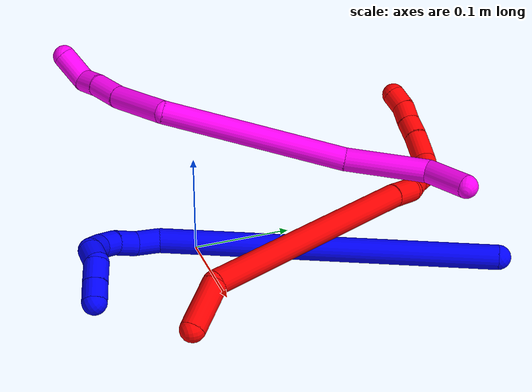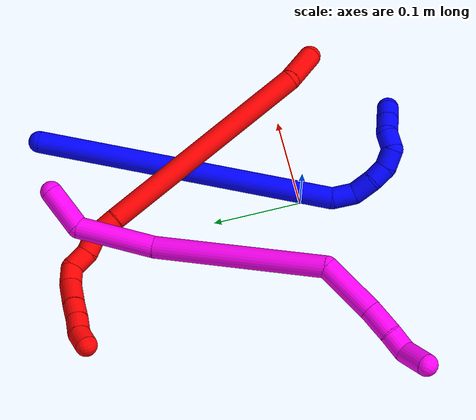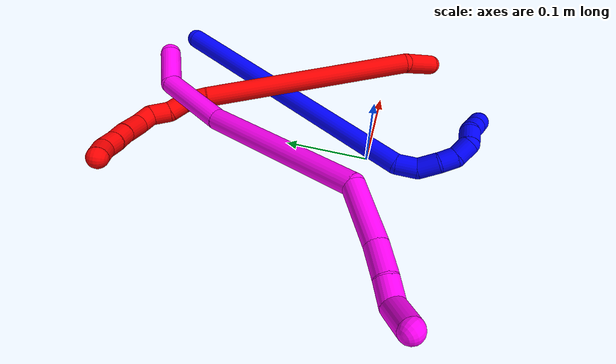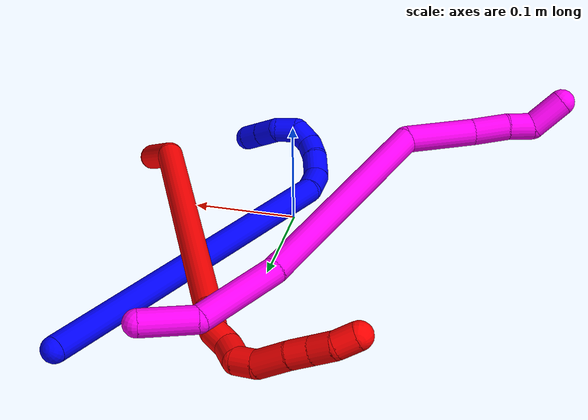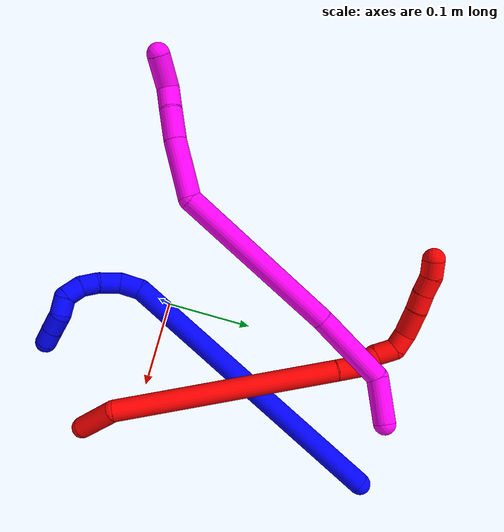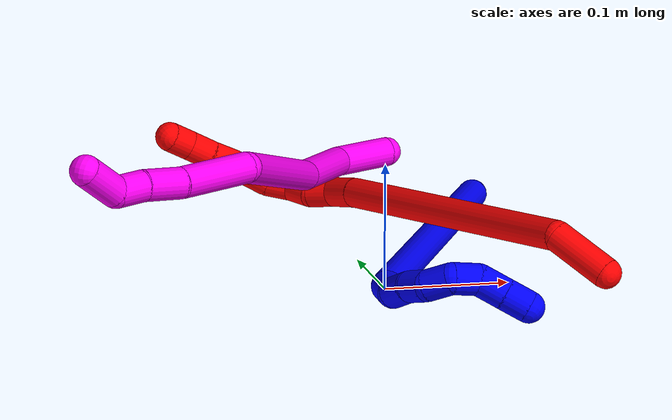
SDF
<sdf version="1.7">
 <world name="default">
  <model name="photoneo_s_sensor">
   <static>1</static>
   <pose>0 0 2 1.57079 1.57079 3.14159</pose>
   <link name="link">
    <inertial><mass>0.1</mass></inertial>
    <sensor name="sensor" type="depth">
     <update_rate>30</update_rate>
     <camera>
      <horizontal_fov>1.22</horizontal_fov>
      <image><width>1920</width><height>1200</height><format>B8G8R8</format></image>
      <clip><near>0.1</near><far>4</far></clip>
      <depth_camera><output>points</output></depth_camera>
     </camera>
     <plugin name="camera_plugin" filename="libgazebo_ros_depth_camera.so">
      <baseline>0.2</baseline>
      <alwaysOn>1</alwaysOn>
      <updateRate>0.0</updateRate>
      <cameraName>camera_ir</cameraName>
      <imageTopicName>/camera/color/image_raw</imageTopicName>
      <cameraInfoTopicName>/camera/color/camera_info</cameraInfoTopicName>
      <depthImageTopicName>/camera/depth/image_raw</depthImageTopicName>
      <depthImageCameraInfoTopicName>/camera/depth/camera_info</depthImageCameraInfoTopicName>
      <pointCloudTopicName>/camera/depth/points</pointCloudTopicName>
      <frameName>fr_optical</frameName>
      <pointCloudCutoff>0.1</pointCloudCutoff>
      <pointCloudCutoffMax>2.0</pointCloudCutoffMax>
      <distortionK1>0</distortionK1>
      <distortionK2>0</distortionK2>
      <distortionK3>0</distortionK3>
      <distortionT1>0</distortionT1>
      <distortionT2>0</distortionT2>
      <CxPrime>0</CxPrime>
      <Cx>0</Cx>
      <Cy>0</Cy>
      <focalLength>0</focalLength>
      <hackBaseline>0</hackBaseline>
     </plugin>
    </sensor>
   </link>
  </model>
  <model name="bin">
   <static>1</static>
   <link name="bottom">
    <collision name="collision-bottom">
     <pose>0 0 -0.01 0 -0 0</pose>
     <geometry><box><size>0.8 0.6 0.02</size></box></geometry>
     <surface>
      <friction><ode><mu>100</mu><mu2>100</mu2></ode></friction>
      <contact><collide_bitmask>65535</collide_bitmask></contact>
     </surface>
    </collision>
   </link>
   <link name="west_wall">
    <collision name="collision-west_wall">
     <pose>-0.41 0 0.1 0 -0 0</pose>
     <geometry><box><size>0.02 0.6 0.2</size></box></geometry>
     <surface>
      <friction><ode><mu>100</mu><mu2>100</mu2></ode></friction>
      <contact><collide_bitmask>65535</collide_bitmask></contact>
     </surface>
    </collision>
   </link>
   <link name="east_wall">
    <collision name="collision-east_wall">
     <pose>0.41 0 0.1 0 -0 0</pose>
     <geometry><box><size>0.02 0.6 0.2</size></box></geometry>
     <surface>
      <friction><ode><mu>100</mu><mu2>100</mu2></ode></friction>
      <contact><collide_bitmask>65535</collide_bitmask></contact>
     </surface>
    </collision>
   </link>
   <link name="south_wall">
    <collision name="collision-south_wall">
     <pose>0 -0.31 0.1 0 -0 0</pose>
     <geometry><box><size>0.8 0.02 0.2</size></box></geometry>
     <surface>
      <friction><ode><mu>100</mu><mu2>100</mu2></ode></friction>
      <contact><collide_bitmask>65535</collide_bitmask></contact>
     </surface>
    </collision>
   </link>
   <link name="north_wall">
    <collision name="collision-north_wall">
     <pose>0 0.31 0.1 0 -0 0</pose>
     <geometry><box><size>0.8 0.02 0.2</size></box></geometry>
     <surface>
      <friction><ode><mu>100</mu><mu2>100</mu2></ode></friction>
      <contact><collide_bitmask>65535</collide_bitmask></contact>
     </surface>
    </collision>
   </link>
  </model>
  <model name="1">
   <static>0</static>
   <link name="1">
    <collision name="collision-cylinder-e_1_1_4">
     <pose>-0.064429 -0.074584 -0.139258 2.64989 -0.387251 -1.32662</pose>
     <geometry><cylinder><radius>0.0125</radius><length>0.341213</length></cylinder></geometry>
     <surface>
      <friction><ode><mu>1.16</mu><mu2>1.16</mu2><slip1>0</slip1><slip2>0</slip2></ode></friction>
      <contact><ode><kp>1e+06</kp><kd>1</kd><max_vel>0</max_vel><min_depth>0.001</min_depth></ode></contact>
     </surface>
    </collision>
    <visual name="visual-cylinder-e_1_1_4">
     <pose>-0.064429 -0.074584 -0.139258 2.64989 -0.387251 -1.32662</pose>
     <geometry><cylinder><radius>0.0125</radius><length>0.341213</length></cylinder></geometry>
     <material><ambient>0 0 1 1</ambient></material>
    </visual>
    <collision name="collision-cylinder-e_2_4_5">
     <pose>-0.129223 -0.157543 -0.288476 2.44243 -0.028118 -0.077096</pose>
     <geometry><cylinder><radius>0.0125</radius><length>0.026037</length></cylinder></geometry>
     <surface>
      <friction><ode><mu>1.16</mu><mu2>1.16</mu2><slip1>0</slip1><slip2>0</slip2></ode></friction>
      <contact><ode><kp>1e+06</kp><kd>1</kd><max_vel>0</max_vel><min_depth>0.001</min_depth></ode></contact>
     </surface>
    </collision>
    <visual name="visual-cylinder-e_2_4_5">
     <pose>-0.129223 -0.157543 -0.288476 2.44243 -0.028118 -0.077096</pose>
     <geometry><cylinder><radius>0.0125</radius><length>0.026037</length></cylinder></geometry>
     <material><ambient>0 0 1 1</ambient></material>
    </visual>
    <collision name="collision-cylinder-e_3_5_6">
     <pose>-0.127982 -0.177607 -0.303522 1.98121 0.125386 0.190968</pose>
     <geometry><cylinder><radius>0.0125</radius><length>0.025697</length></cylinder></geometry>
     <surface>
      <friction><ode><mu>1.16</mu><mu2>1.16</mu2><slip1>0</slip1><slip2>0</slip2></ode></friction>
      <contact><ode><kp>1e+06</kp><kd>1</kd><max_vel>0</max_vel><min_depth>0.001</min_depth></ode></contact>
     </surface>
    </collision>
    <visual name="visual-cylinder-e_3_5_6">
     <pose>-0.127982 -0.177607 -0.303522 1.98121 0.125386 0.190968</pose>
     <geometry><cylinder><radius>0.0125</radius><length>0.025697</length></cylinder></geometry>
     <material><ambient>0 0 1 1</ambient></material>
    </visual>
    <collision name="collision-cylinder-e_4_6_7">
     <pose>-0.122667 -0.197791 -0.312906 2.03916 0.371494 0.593283</pose>
     <geometry><cylinder><radius>0.0125</radius><length>0.020435</length></cylinder></geometry>
     <surface>
      <friction><ode><mu>1.16</mu><mu2>1.16</mu2><slip1>0</slip1><slip2>0</slip2></ode></friction>
      <contact><ode><kp>1e+06</kp><kd>1</kd><max_vel>0</max_vel><min_depth>0.001</min_depth></ode></contact>
     </surface>
    </collision>
    <visual name="visual-cylinder-e_4_6_7">
     <pose>-0.122667 -0.197791 -0.312906 2.03916 0.371494 0.593283</pose>
     <geometry><cylinder><radius>0.0125</radius><length>0.020435</length></cylinder></geometry>
     <material><ambient>0 0 1 1</ambient></material>
    </visual>
    <collision name="collision-cylinder-e_5_7_8">
     <pose>-0.112657 -0.215395 -0.317573 1.61126 0.60477 0.628167</pose>
     <geometry><cylinder><radius>0.0125</radius><length>0.022163</length></cylinder></geometry>
     <surface>
      <friction><ode><mu>1.16</mu><mu2>1.16</mu2><slip1>0</slip1><slip2>0</slip2></ode></friction>
      <contact><ode><kp>1e+06</kp><kd>1</kd><max_vel>0</max_vel><min_depth>0.001</min_depth></ode></contact>
     </surface>
    </collision>
    <visual name="visual-cylinder-e_5_7_8">
     <pose>-0.112657 -0.215395 -0.317573 1.61126 0.60477 0.628167</pose>
     <geometry><cylinder><radius>0.0125</radius><length>0.022163</length></cylinder></geometry>
     <material><ambient>0 0 1 1</ambient></material>
    </visual>
    <collision name="collision-cylinder-e_6_8_9">
     <pose>-0.096292 -0.22674 -0.315622 0.767044 1.26096 0.572798</pose>
     <geometry><cylinder><radius>0.0125</radius><length>0.021134</length></cylinder></geometry>
     <surface>
      <friction><ode><mu>1.16</mu><mu2>1.16</mu2><slip1>0</slip1><slip2>0</slip2></ode></friction>
      <contact><ode><kp>1e+06</kp><kd>1</kd><max_vel>0</max_vel><min_depth>0.001</min_depth></ode></contact>
     </surface>
    </collision>
    <visual name="visual-cylinder-e_6_8_9">
     <pose>-0.096292 -0.22674 -0.315622 0.767044 1.26096 0.572798</pose>
     <geometry><cylinder><radius>0.0125</radius><length>0.021134</length></cylinder></geometry>
     <material><ambient>0 0 1 1</ambient></material>
    </visual>
    <collision name="collision-cylinder-e_7_9_10">
     <pose>-0.075349 -0.229966 -0.316458 2.83745 1.27565 2.7338</pose>
     <geometry><cylinder><radius>0.0125</radius><length>0.022742</length></cylinder></geometry>
     <surface>
      <friction><ode><mu>1.16</mu><mu2>1.16</mu2><slip1>0</slip1><slip2>0</slip2></ode></friction>
      <contact><ode><kp>1e+06</kp><kd>1</kd><max_vel>0</max_vel><min_depth>0.001</min_depth></ode></contact>
     </surface>
    </collision>
    <visual name="visual-cylinder-e_7_9_10">
     <pose>-0.075349 -0.229966 -0.316458 2.83745 1.27565 2.7338</pose>
     <geometry><cylinder><radius>0.0125</radius><length>0.022742</length></cylinder></geometry>
     <material><ambient>0 0 1 1</ambient></material>
    </visual>
    <collision name="collision-cylinder-e_8_10_2">
     <pose>-0.054571 -0.231748 -0.32231 2.85608 1.29414 2.76563</pose>
     <geometry><cylinder><radius>0.0125</radius><length>0.020578</length></cylinder></geometry>
     <surface>
      <friction><ode><mu>1.16</mu><mu2>1.16</mu2><slip1>0</slip1><slip2>0</slip2></ode></friction>
      <contact><ode><kp>1e+06</kp><kd>1</kd><max_vel>0</max_vel><min_depth>0.001</min_depth></ode></contact>
     </surface>
    </collision>
    <visual name="visual-cylinder-e_8_10_2">
     <pose>-0.054571 -0.231748 -0.32231 2.85608 1.29414 2.76563</pose>
     <geometry><cylinder><radius>0.0125</radius><length>0.020578</length></cylinder></geometry>
     <material><ambient>0 0 1 1</ambient></material>
    </visual>
    <collision name="collision-sphere-2">
     <pose>-0.044673 -0.23254 -0.325007 0 -0 0</pose>
     <geometry><sphere><radius>0.0125</radius></sphere></geometry>
     <surface>
      <friction><ode><mu>1.16</mu><mu2>1.16</mu2><slip1>0</slip1><slip2>0</slip2></ode></friction>
      <contact><ode><kp>1e+06</kp><kd>1</kd><max_vel>0</max_vel><min_depth>0.001</min_depth></ode></contact>
     </surface>
    </collision>
    <visual name="visual-sphere-2">
     <pose>-0.044673 -0.23254 -0.325007 0 -0 0</pose>
     <geometry><sphere><radius>0.0125</radius></sphere></geometry>
     <material><ambient>0 0 1 1</ambient></material>
    </visual>
    <collision name="collision-sphere-10">
     <pose>-0.064469 -0.230957 -0.319614 0 -0 0</pose>
     <geometry><sphere><radius>0.0125</radius></sphere></geometry>
     <surface>
      <friction><ode><mu>1.16</mu><mu2>1.16</mu2><slip1>0</slip1><slip2>0</slip2></ode></friction>
      <contact><ode><kp>1e+06</kp><kd>1</kd><max_vel>0</max_vel><min_depth>0.001</min_depth></ode></contact>
     </surface>
    </collision>
    <visual name="visual-sphere-10">
     <pose>-0.064469 -0.230957 -0.319614 0 -0 0</pose>
     <geometry><sphere><radius>0.0125</radius></sphere></geometry>
     <material><ambient>0 0 1 1</ambient></material>
    </visual>
    <collision name="collision-sphere-9">
     <pose>-0.086228 -0.228976 -0.313302 0 -0 0</pose>
     <geometry><sphere><radius>0.0125</radius></sphere></geometry>
     <surface>
      <friction><ode><mu>1.16</mu><mu2>1.16</mu2><slip1>0</slip1><slip2>0</slip2></ode></friction>
      <contact><ode><kp>1e+06</kp><kd>1</kd><max_vel>0</max_vel><min_depth>0.001</min_depth></ode></contact>
     </surface>
    </collision>
    <visual name="visual-sphere-9">
     <pose>-0.086228 -0.228976 -0.313302 0 -0 0</pose>
     <geometry><sphere><radius>0.0125</radius></sphere></geometry>
     <material><ambient>0 0 1 1</ambient></material>
    </visual>
    <collision name="collision-sphere-4">
     <pose>-0.128857 -0.149168 -0.278516 0 -0 0</pose>
     <geometry><sphere><radius>0.0125</radius></sphere></geometry>
     <surface>
      <friction><ode><mu>1.16</mu><mu2>1.16</mu2><slip1>0</slip1><slip2>0</slip2></ode></friction>
      <contact><ode><kp>1e+06</kp><kd>1</kd><max_vel>0</max_vel><min_depth>0.001</min_depth></ode></contact>
     </surface>
    </collision>
    <visual name="visual-sphere-4">
     <pose>-0.128857 -0.149168 -0.278516 0 -0 0</pose>
     <geometry><sphere><radius>0.0125</radius></sphere></geometry>
     <material><ambient>0 0 1 1</ambient></material>
    </visual>
    <collision name="collision-sphere-1">
     <geometry><sphere><radius>0.0125</radius></sphere></geometry>
     <surface>
      <friction><ode><mu>1.16</mu><mu2>1.16</mu2><slip1>0</slip1><slip2>0</slip2></ode></friction>
      <contact><ode><kp>1e+06</kp><kd>1</kd><max_vel>0</max_vel><min_depth>0.001</min_depth></ode></contact>
     </surface>
    </collision>
    <visual name="visual-sphere-1">
     <geometry><sphere><radius>0.0125</radius></sphere></geometry>
     <material><ambient>0 0 1 1</ambient></material>
    </visual>
    <collision name="collision-sphere-8">
     <pose>-0.106356 -0.224504 -0.317942 0 -0 0</pose>
     <geometry><sphere><radius>0.0125</radius></sphere></geometry>
     <surface>
      <friction><ode><mu>1.16</mu><mu2>1.16</mu2><slip1>0</slip1><slip2>0</slip2></ode></friction>
      <contact><ode><kp>1e+06</kp><kd>1</kd><max_vel>0</max_vel><min_depth>0.001</min_depth></ode></contact>
     </surface>
    </collision>
    <visual name="visual-sphere-8">
     <pose>-0.106356 -0.224504 -0.317942 0 -0 0</pose>
     <geometry><sphere><radius>0.0125</radius></sphere></geometry>
     <material><ambient>0 0 1 1</ambient></material>
    </visual>
    <collision name="collision-sphere-5">
     <pose>-0.129589 -0.165918 -0.298436 0 -0 0</pose>
     <geometry><sphere><radius>0.0125</radius></sphere></geometry>
     <surface>
      <friction><ode><mu>1.16</mu><mu2>1.16</mu2><slip1>0</slip1><slip2>0</slip2></ode></friction>
      <contact><ode><kp>1e+06</kp><kd>1</kd><max_vel>0</max_vel><min_depth>0.001</min_depth></ode></contact>
     </surface>
    </collision>
    <visual name="visual-sphere-5">
     <pose>-0.129589 -0.165918 -0.298436 0 -0 0</pose>
     <geometry><sphere><radius>0.0125</radius></sphere></geometry>
     <material><ambient>0 0 1 1</ambient></material>
    </visual>
    <collision name="collision-sphere-6">
     <pose>-0.126376 -0.189296 -0.308608 0 -0 0</pose>
     <geometry><sphere><radius>0.0125</radius></sphere></geometry>
     <surface>
      <friction><ode><mu>1.16</mu><mu2>1.16</mu2><slip1>0</slip1><slip2>0</slip2></ode></friction>
      <contact><ode><kp>1e+06</kp><kd>1</kd><max_vel>0</max_vel><min_depth>0.001</min_depth></ode></contact>
     </surface>
    </collision>
    <visual name="visual-sphere-6">
     <pose>-0.126376 -0.189296 -0.308608 0 -0 0</pose>
     <geometry><sphere><radius>0.0125</radius></sphere></geometry>
     <material><ambient>0 0 1 1</ambient></material>
    </visual>
    <collision name="collision-sphere-7">
     <pose>-0.118957 -0.206286 -0.317204 0 -0 0</pose>
     <geometry><sphere><radius>0.0125</radius></sphere></geometry>
     <surface>
      <friction><ode><mu>1.16</mu><mu2>1.16</mu2><slip1>0</slip1><slip2>0</slip2></ode></friction>
      <contact><ode><kp>1e+06</kp><kd>1</kd><max_vel>0</max_vel><min_depth>0.001</min_depth></ode></contact>
     </surface>
    </collision>
    <visual name="visual-sphere-7">
     <pose>-0.118957 -0.206286 -0.317204 0 -0 0</pose>
     <geometry><sphere><radius>0.0125</radius></sphere></geometry>
     <material><ambient>0 0 1 1</ambient></material>
    </visual>
    <inertial>
     <pose>-0.077025 -0.115443 -0.19352 0 -0 0</pose>
     <mass>0.5</mass>
     <inertia>
      <ixx>-0.002237</ixx>
      <ixy>0</ixy>
      <ixz>0</ixz>
      <iyy>-0.003133</iyy>
      <iyz>0</iyz>
      <izz>0.002683</izz>
     </inertia>
    </inertial>
   </link>
   <pose>0.140667 0.271674 0.01149 -0.90339 0.404856 -0.023743</pose>
  </model>
  <model name="2">
   <static>0</static>
   <link name="2">
    <collision name="collision-cylinder-e_1_1_4">
     <pose>-0.016876 0.004932 0.018583 -0.259427 -0.720386 0.098179</pose>
     <geometry><cylinder><radius>0.0125</radius><length>0.051165</length></cylinder></geometry>
     <surface>
      <friction><ode><mu>1.16</mu><mu2>1.16</mu2><slip1>0</slip1><slip2>0</slip2></ode></friction>
      <contact><ode><kp>1e+06</kp><kd>1</kd><max_vel>0</max_vel><min_depth>0.001</min_depth></ode></contact>
     </surface>
    </collision>
    <visual name="visual-cylinder-e_1_1_4">
     <pose>-0.016876 0.004932 0.018583 -0.259427 -0.720386 0.098179</pose>
     <geometry><cylinder><radius>0.0125</radius><length>0.051165</length></cylinder></geometry>
     <material><ambient>1 0 0 1</ambient></material>
    </visual>
    <collision name="collision-cylinder-e_2_4_5">
     <pose>-0.048212 0.05517 0.156551 -0.362705 -0.112759 0.020698</pose>
     <geometry><cylinder><radius>0.0125</radius><length>0.257017</length></cylinder></geometry>
     <surface>
      <friction><ode><mu>1.16</mu><mu2>1.16</mu2><slip1>0</slip1><slip2>0</slip2></ode></friction>
      <contact><ode><kp>1e+06</kp><kd>1</kd><max_vel>0</max_vel><min_depth>0.001</min_depth></ode></contact>
     </surface>
    </collision>
    <visual name="visual-cylinder-e_2_4_5">
     <pose>-0.048212 0.05517 0.156551 -0.362705 -0.112759 0.020698</pose>
     <geometry><cylinder><radius>0.0125</radius><length>0.257017</length></cylinder></geometry>
     <material><ambient>1 0 0 1</ambient></material>
    </visual>
    <collision name="collision-cylinder-e_3_5_6">
     <pose>-0.06301 0.106724 0.289666 -0.427065 -0.022391 0.004856</pose>
     <geometry><cylinder><radius>0.0125</radius><length>0.030178</length></cylinder></geometry>
     <surface>
      <friction><ode><mu>1.16</mu><mu2>1.16</mu2><slip1>0</slip1><slip2>0</slip2></ode></friction>
      <contact><ode><kp>1e+06</kp><kd>1</kd><max_vel>0</max_vel><min_depth>0.001</min_depth></ode></contact>
     </surface>
    </collision>
    <visual name="visual-cylinder-e_3_5_6">
     <pose>-0.06301 0.106724 0.289666 -0.427065 -0.022391 0.004856</pose>
     <geometry><cylinder><radius>0.0125</radius><length>0.030178</length></cylinder></geometry>
     <material><ambient>1 0 0 1</ambient></material>
    </visual>
    <collision name="collision-cylinder-e_4_6_7">
     <pose>-0.066364 0.120248 0.310512 -0.796496 -0.288137 0.121922</pose>
     <geometry><cylinder><radius>0.0125</radius><length>0.021228</length></cylinder></geometry>
     <surface>
      <friction><ode><mu>1.16</mu><mu2>1.16</mu2><slip1>0</slip1><slip2>0</slip2></ode></friction>
      <contact><ode><kp>1e+06</kp><kd>1</kd><max_vel>0</max_vel><min_depth>0.001</min_depth></ode></contact>
     </surface>
    </collision>
    <visual name="visual-cylinder-e_4_6_7">
     <pose>-0.066364 0.120248 0.310512 -0.796496 -0.288137 0.121922</pose>
     <geometry><cylinder><radius>0.0125</radius><length>0.021228</length></cylinder></geometry>
     <material><ambient>1 0 0 1</ambient></material>
    </visual>
    <collision name="collision-cylinder-e_5_7_8">
     <pose>-0.072757 0.131981 0.328296 -0.395834 -0.284162 0.057357</pose>
     <geometry><cylinder><radius>0.0125</radius><length>0.024093</length></cylinder></geometry>
     <surface>
      <friction><ode><mu>1.16</mu><mu2>1.16</mu2><slip1>0</slip1><slip2>0</slip2></ode></friction>
      <contact><ode><kp>1e+06</kp><kd>1</kd><max_vel>0</max_vel><min_depth>0.001</min_depth></ode></contact>
     </surface>
    </collision>
    <visual name="visual-cylinder-e_5_7_8">
     <pose>-0.072757 0.131981 0.328296 -0.395834 -0.284162 0.057357</pose>
     <geometry><cylinder><radius>0.0125</radius><length>0.024093</length></cylinder></geometry>
     <material><ambient>1 0 0 1</ambient></material>
    </visual>
    <collision name="collision-cylinder-e_6_8_9">
     <pose>-0.08317 0.143191 0.34297 -1.0354 -0.730774 0.429045</pose>
     <geometry><cylinder><radius>0.0125</radius><length>0.021082</length></cylinder></geometry>
     <surface>
      <friction><ode><mu>1.16</mu><mu2>1.16</mu2><slip1>0</slip1><slip2>0</slip2></ode></friction>
      <contact><ode><kp>1e+06</kp><kd>1</kd><max_vel>0</max_vel><min_depth>0.001</min_depth></ode></contact>
     </surface>
    </collision>
    <visual name="visual-cylinder-e_6_8_9">
     <pose>-0.08317 0.143191 0.34297 -1.0354 -0.730774 0.429045</pose>
     <geometry><cylinder><radius>0.0125</radius><length>0.021082</length></cylinder></geometry>
     <material><ambient>1 0 0 1</ambient></material>
    </visual>
    <collision name="collision-cylinder-e_7_9_10">
     <pose>-0.104763 0.156543 0.349837 -1.16167 -1.11178 0.774353</pose>
     <geometry><cylinder><radius>0.0125</radius><length>0.032479</length></cylinder></geometry>
     <surface>
      <friction><ode><mu>1.16</mu><mu2>1.16</mu2><slip1>0</slip1><slip2>0</slip2></ode></friction>
      <contact><ode><kp>1e+06</kp><kd>1</kd><max_vel>0</max_vel><min_depth>0.001</min_depth></ode></contact>
     </surface>
    </collision>
    <visual name="visual-cylinder-e_7_9_10">
     <pose>-0.104763 0.156543 0.349837 -1.16167 -1.11178 0.774353</pose>
     <geometry><cylinder><radius>0.0125</radius><length>0.032479</length></cylinder></geometry>
     <material><ambient>1 0 0 1</ambient></material>
    </visual>
    <collision name="collision-cylinder-e_8_10_11">
     <pose>-0.128431 0.168381 0.354059 -1.31667 -1.03481 0.829318</pose>
     <geometry><cylinder><radius>0.0125</radius><length>0.021189</length></cylinder></geometry>
     <surface>
      <friction><ode><mu>1.16</mu><mu2>1.16</mu2><slip1>0</slip1><slip2>0</slip2></ode></friction>
      <contact><ode><kp>1e+06</kp><kd>1</kd><max_vel>0</max_vel><min_depth>0.001</min_depth></ode></contact>
     </surface>
    </collision>
    <visual name="visual-cylinder-e_8_10_11">
     <pose>-0.128431 0.168381 0.354059 -1.31667 -1.03481 0.829318</pose>
     <geometry><cylinder><radius>0.0125</radius><length>0.021189</length></cylinder></geometry>
     <material><ambient>1 0 0 1</ambient></material>
    </visual>
    <collision name="collision-cylinder-e_9_11_12">
     <pose>-0.146867 0.178435 0.357588 -1.14786 -1.0555 0.720803</pose>
     <geometry><cylinder><radius>0.0125</radius><length>0.02144</length></cylinder></geometry>
     <surface>
      <friction><ode><mu>1.16</mu><mu2>1.16</mu2><slip1>0</slip1><slip2>0</slip2></ode></friction>
      <contact><ode><kp>1e+06</kp><kd>1</kd><max_vel>0</max_vel><min_depth>0.001</min_depth></ode></contact>
     </surface>
    </collision>
    <visual name="visual-cylinder-e_9_11_12">
     <pose>-0.146867 0.178435 0.357588 -1.14786 -1.0555 0.720803</pose>
     <geometry><cylinder><radius>0.0125</radius><length>0.02144</length></cylinder></geometry>
     <material><ambient>1 0 0 1</ambient></material>
    </visual>
    <collision name="collision-cylinder-e_10_12_2">
     <pose>-0.165248 0.187511 0.358648 -1.82533 -1.11829 1.3609</pose>
     <geometry><cylinder><radius>0.0125</radius><length>0.020131</length></cylinder></geometry>
     <surface>
      <friction><ode><mu>1.16</mu><mu2>1.16</mu2><slip1>0</slip1><slip2>0</slip2></ode></friction>
      <contact><ode><kp>1e+06</kp><kd>1</kd><max_vel>0</max_vel><min_depth>0.001</min_depth></ode></contact>
     </surface>
    </collision>
    <visual name="visual-cylinder-e_10_12_2">
     <pose>-0.165248 0.187511 0.358648 -1.82533 -1.11829 1.3609</pose>
     <geometry><cylinder><radius>0.0125</radius><length>0.020131</length></cylinder></geometry>
     <material><ambient>1 0 0 1</ambient></material>
    </visual>
    <collision name="collision-sphere-2">
     <pose>-0.1743 0.19177 0.35754 0 -0 0</pose>
     <geometry><sphere><radius>0.0125</radius></sphere></geometry>
     <surface>
      <friction><ode><mu>1.16</mu><mu2>1.16</mu2><slip1>0</slip1><slip2>0</slip2></ode></friction>
      <contact><ode><kp>1e+06</kp><kd>1</kd><max_vel>0</max_vel><min_depth>0.001</min_depth></ode></contact>
     </surface>
    </collision>
    <visual name="visual-sphere-2">
     <pose>-0.1743 0.19177 0.35754 0 -0 0</pose>
     <geometry><sphere><radius>0.0125</radius></sphere></geometry>
     <material><ambient>1 0 0 1</ambient></material>
    </visual>
    <collision name="collision-sphere-12">
     <pose>-0.156195 0.183252 0.359756 0 -0 0</pose>
     <geometry><sphere><radius>0.0125</radius></sphere></geometry>
     <surface>
      <friction><ode><mu>1.16</mu><mu2>1.16</mu2><slip1>0</slip1><slip2>0</slip2></ode></friction>
      <contact><ode><kp>1e+06</kp><kd>1</kd><max_vel>0</max_vel><min_depth>0.001</min_depth></ode></contact>
     </surface>
    </collision>
    <visual name="visual-sphere-12">
     <pose>-0.156195 0.183252 0.359756 0 -0 0</pose>
     <geometry><sphere><radius>0.0125</radius></sphere></geometry>
     <material><ambient>1 0 0 1</ambient></material>
    </visual>
    <collision name="collision-sphere-11">
     <pose>-0.137539 0.173618 0.355419 0 -0 0</pose>
     <geometry><sphere><radius>0.0125</radius></sphere></geometry>
     <surface>
      <friction><ode><mu>1.16</mu><mu2>1.16</mu2><slip1>0</slip1><slip2>0</slip2></ode></friction>
      <contact><ode><kp>1e+06</kp><kd>1</kd><max_vel>0</max_vel><min_depth>0.001</min_depth></ode></contact>
     </surface>
    </collision>
    <visual name="visual-sphere-11">
     <pose>-0.137539 0.173618 0.355419 0 -0 0</pose>
     <geometry><sphere><radius>0.0125</radius></sphere></geometry>
     <material><ambient>1 0 0 1</ambient></material>
    </visual>
    <collision name="collision-sphere-10">
     <pose>-0.119322 0.163144 0.352699 0 -0 0</pose>
     <geometry><sphere><radius>0.0125</radius></sphere></geometry>
     <surface>
      <friction><ode><mu>1.16</mu><mu2>1.16</mu2><slip1>0</slip1><slip2>0</slip2></ode></friction>
      <contact><ode><kp>1e+06</kp><kd>1</kd><max_vel>0</max_vel><min_depth>0.001</min_depth></ode></contact>
     </surface>
    </collision>
    <visual name="visual-sphere-10">
     <pose>-0.119322 0.163144 0.352699 0 -0 0</pose>
     <geometry><sphere><radius>0.0125</radius></sphere></geometry>
     <material><ambient>1 0 0 1</ambient></material>
    </visual>
    <collision name="collision-sphere-9">
     <pose>-0.090205 0.149942 0.346975 0 -0 0</pose>
     <geometry><sphere><radius>0.0125</radius></sphere></geometry>
     <surface>
      <friction><ode><mu>1.16</mu><mu2>1.16</mu2><slip1>0</slip1><slip2>0</slip2></ode></friction>
      <contact><ode><kp>1e+06</kp><kd>1</kd><max_vel>0</max_vel><min_depth>0.001</min_depth></ode></contact>
     </surface>
    </collision>
    <visual name="visual-sphere-9">
     <pose>-0.090205 0.149942 0.346975 0 -0 0</pose>
     <geometry><sphere><radius>0.0125</radius></sphere></geometry>
     <material><ambient>1 0 0 1</ambient></material>
    </visual>
    <collision name="collision-sphere-4">
     <pose>-0.033752 0.009864 0.037166 0 -0 0</pose>
     <geometry><sphere><radius>0.0125</radius></sphere></geometry>
     <surface>
      <friction><ode><mu>1.16</mu><mu2>1.16</mu2><slip1>0</slip1><slip2>0</slip2></ode></friction>
      <contact><ode><kp>1e+06</kp><kd>1</kd><max_vel>0</max_vel><min_depth>0.001</min_depth></ode></contact>
     </surface>
    </collision>
    <visual name="visual-sphere-4">
     <pose>-0.033752 0.009864 0.037166 0 -0 0</pose>
     <geometry><sphere><radius>0.0125</radius></sphere></geometry>
     <material><ambient>1 0 0 1</ambient></material>
    </visual>
    <collision name="collision-sphere-1">
     <geometry><sphere><radius>0.0125</radius></sphere></geometry>
     <surface>
      <friction><ode><mu>1.16</mu><mu2>1.16</mu2><slip1>0</slip1><slip2>0</slip2></ode></friction>
      <contact><ode><kp>1e+06</kp><kd>1</kd><max_vel>0</max_vel><min_depth>0.001</min_depth></ode></contact>
     </surface>
    </collision>
    <visual name="visual-sphere-1">
     <geometry><sphere><radius>0.0125</radius></sphere></geometry>
     <material><ambient>1 0 0 1</ambient></material>
    </visual>
    <collision name="collision-sphere-8">
     <pose>-0.076134 0.13644 0.338965 0 -0 0</pose>
     <geometry><sphere><radius>0.0125</radius></sphere></geometry>
     <surface>
      <friction><ode><mu>1.16</mu><mu2>1.16</mu2><slip1>0</slip1><slip2>0</slip2></ode></friction>
      <contact><ode><kp>1e+06</kp><kd>1</kd><max_vel>0</max_vel><min_depth>0.001</min_depth></ode></contact>
     </surface>
    </collision>
    <visual name="visual-sphere-8">
     <pose>-0.076134 0.13644 0.338965 0 -0 0</pose>
     <geometry><sphere><radius>0.0125</radius></sphere></geometry>
     <material><ambient>1 0 0 1</ambient></material>
    </visual>
    <collision name="collision-sphere-5">
     <pose>-0.062672 0.100476 0.275936 0 -0 0</pose>
     <geometry><sphere><radius>0.0125</radius></sphere></geometry>
     <surface>
      <friction><ode><mu>1.16</mu><mu2>1.16</mu2><slip1>0</slip1><slip2>0</slip2></ode></friction>
      <contact><ode><kp>1e+06</kp><kd>1</kd><max_vel>0</max_vel><min_depth>0.001</min_depth></ode></contact>
     </surface>
    </collision>
    <visual name="visual-sphere-5">
     <pose>-0.062672 0.100476 0.275936 0 -0 0</pose>
     <geometry><sphere><radius>0.0125</radius></sphere></geometry>
     <material><ambient>1 0 0 1</ambient></material>
    </visual>
    <collision name="collision-sphere-6">
     <pose>-0.063347 0.112972 0.303396 0 -0 0</pose>
     <geometry><sphere><radius>0.0125</radius></sphere></geometry>
     <surface>
      <friction><ode><mu>1.16</mu><mu2>1.16</mu2><slip1>0</slip1><slip2>0</slip2></ode></friction>
      <contact><ode><kp>1e+06</kp><kd>1</kd><max_vel>0</max_vel><min_depth>0.001</min_depth></ode></contact>
     </surface>
    </collision>
    <visual name="visual-sphere-6">
     <pose>-0.063347 0.112972 0.303396 0 -0 0</pose>
     <geometry><sphere><radius>0.0125</radius></sphere></geometry>
     <material><ambient>1 0 0 1</ambient></material>
    </visual>
    <collision name="collision-sphere-7">
     <pose>-0.06938 0.127523 0.317627 0 -0 0</pose>
     <geometry><sphere><radius>0.0125</radius></sphere></geometry>
     <surface>
      <friction><ode><mu>1.16</mu><mu2>1.16</mu2><slip1>0</slip1><slip2>0</slip2></ode></friction>
      <contact><ode><kp>1e+06</kp><kd>1</kd><max_vel>0</max_vel><min_depth>0.001</min_depth></ode></contact>
     </surface>
    </collision>
    <visual name="visual-sphere-7">
     <pose>-0.06938 0.127523 0.317627 0 -0 0</pose>
     <geometry><sphere><radius>0.0125</radius></sphere></geometry>
     <material><ambient>1 0 0 1</ambient></material>
    </visual>
    <inertial>
     <pose>-0.065341 0.085313 0.210822 0 -0 0</pose>
     <mass>0.5</mass>
     <inertia>
      <ixx>0.001457</ixx>
      <ixy>0</ixy>
      <ixz>0</ixz>
      <iyy>0.00141</iyy>
      <iyz>0</iyz>
      <izz>-0.000306</izz>
     </inertia>
    </inertial>
   </link>
   <pose>0.164983 -0.054693 0.017108 -1.42274 0.921796 0.209434</pose>
  </model>
  <model name="10">
   <static>0</static>
   <link name="10">
    <collision name="collision-cylinder-e_1_1_4">
     <pose>-0.015797 -0.015045 0.013582 0.836491 -0.662029 -0.303149</pose>
     <geometry><cylinder><radius>0.0125</radius><length>0.051395</length></cylinder></geometry>
     <surface>
      <friction><ode><mu>1.16</mu><mu2>1.16</mu2><slip1>0</slip1><slip2>0</slip2></ode></friction>
      <contact><ode><kp>1e+06</kp><kd>1</kd><max_vel>0</max_vel><min_depth>0.001</min_depth></ode></contact>
     </surface>
    </collision>
    <visual name="visual-cylinder-e_1_1_4">
     <pose>-0.015797 -0.015045 0.013582 0.836491 -0.662029 -0.303149</pose>
     <geometry><cylinder><radius>0.0125</radius><length>0.051395</length></cylinder></geometry>
     <material><ambient>1 0 0.964706 1</ambient></material>
    </visual>
    <collision name="collision-cylinder-e_2_4_5">
     <pose>-0.056 -0.067185 0.024553 1.64104 -0.580827 -0.62055</pose>
     <geometry><cylinder><radius>0.0125</radius><length>0.088959</length></cylinder></geometry>
     <surface>
      <friction><ode><mu>1.16</mu><mu2>1.16</mu2><slip1>0</slip1><slip2>0</slip2></ode></friction>
      <contact><ode><kp>1e+06</kp><kd>1</kd><max_vel>0</max_vel><min_depth>0.001</min_depth></ode></contact>
     </surface>
    </collision>
    <visual name="visual-cylinder-e_2_4_5">
     <pose>-0.056 -0.067185 0.024553 1.64104 -0.580827 -0.62055</pose>
     <geometry><cylinder><radius>0.0125</radius><length>0.088959</length></cylinder></geometry>
     <material><ambient>1 0 0.964706 1</ambient></material>
    </visual>
    <collision name="collision-cylinder-e_3_5_6">
     <pose>-0.118614 -0.19498 0.010407 1.6973 -0.395823 -0.447684</pose>
     <geometry><cylinder><radius>0.0125</radius><length>0.198188</length></cylinder></geometry>
     <surface>
      <friction><ode><mu>1.16</mu><mu2>1.16</mu2><slip1>0</slip1><slip2>0</slip2></ode></friction>
      <contact><ode><kp>1e+06</kp><kd>1</kd><max_vel>0</max_vel><min_depth>0.001</min_depth></ode></contact>
     </surface>
    </collision>
    <visual name="visual-cylinder-e_3_5_6">
     <pose>-0.118614 -0.19498 0.010407 1.6973 -0.395823 -0.447684</pose>
     <geometry><cylinder><radius>0.0125</radius><length>0.198188</length></cylinder></geometry>
     <material><ambient>1 0 0.964706 1</ambient></material>
    </visual>
    <collision name="collision-cylinder-e_4_6_7">
     <pose>-0.177778 -0.307192 0.012888 0.9933 -0.684557 -0.381509</pose>
     <geometry><cylinder><radius>0.0125</radius><length>0.066284</length></cylinder></geometry>
     <surface>
      <friction><ode><mu>1.16</mu><mu2>1.16</mu2><slip1>0</slip1><slip2>0</slip2></ode></friction>
      <contact><ode><kp>1e+06</kp><kd>1</kd><max_vel>0</max_vel><min_depth>0.001</min_depth></ode></contact>
     </surface>
    </collision>
    <visual name="visual-cylinder-e_4_6_7">
     <pose>-0.177778 -0.307192 0.012888 0.9933 -0.684557 -0.381509</pose>
     <geometry><cylinder><radius>0.0125</radius><length>0.066284</length></cylinder></geometry>
     <material><ambient>1 0 0.964706 1</ambient></material>
    </visual>
    <collision name="collision-cylinder-e_5_7_8">
     <pose>-0.207846 -0.340159 0.035977 0.901009 -0.557525 -0.275123</pose>
     <geometry><cylinder><radius>0.0125</radius><length>0.034439</length></cylinder></geometry>
     <surface>
      <friction><ode><mu>1.16</mu><mu2>1.16</mu2><slip1>0</slip1><slip2>0</slip2></ode></friction>
      <contact><ode><kp>1e+06</kp><kd>1</kd><max_vel>0</max_vel><min_depth>0.001</min_depth></ode></contact>
     </surface>
    </collision>
    <visual name="visual-cylinder-e_5_7_8">
     <pose>-0.207846 -0.340159 0.035977 0.901009 -0.557525 -0.275123</pose>
     <geometry><cylinder><radius>0.0125</radius><length>0.034439</length></cylinder></geometry>
     <material><ambient>1 0 0.964706 1</ambient></material>
    </visual>
    <collision name="collision-cylinder-e_6_8_9">
     <pose>-0.224941 -0.358691 0.051353 0.843004 -0.700094 -0.324509</pose>
     <geometry><cylinder><radius>0.0125</radius><length>0.024786</length></cylinder></geometry>
     <surface>
      <friction><ode><mu>1.16</mu><mu2>1.16</mu2><slip1>0</slip1><slip2>0</slip2></ode></friction>
      <contact><ode><kp>1e+06</kp><kd>1</kd><max_vel>0</max_vel><min_depth>0.001</min_depth></ode></contact>
     </surface>
    </collision>
    <visual name="visual-cylinder-e_6_8_9">
     <pose>-0.224941 -0.358691 0.051353 0.843004 -0.700094 -0.324509</pose>
     <geometry><cylinder><radius>0.0125</radius><length>0.024786</length></cylinder></geometry>
     <material><ambient>1 0 0.964706 1</ambient></material>
    </visual>
    <collision name="collision-cylinder-e_7_9_2">
     <pose>-0.233691 -0.382138 0.065041 1.14712 -0.042584 -0.027512</pose>
     <geometry><cylinder><radius>0.0125</radius><length>0.035948</length></cylinder></geometry>
     <surface>
      <friction><ode><mu>1.16</mu><mu2>1.16</mu2><slip1>0</slip1><slip2>0</slip2></ode></friction>
      <contact><ode><kp>1e+06</kp><kd>1</kd><max_vel>0</max_vel><min_depth>0.001</min_depth></ode></contact>
     </surface>
    </collision>
    <visual name="visual-cylinder-e_7_9_2">
     <pose>-0.233691 -0.382138 0.065041 1.14712 -0.042584 -0.027512</pose>
     <geometry><cylinder><radius>0.0125</radius><length>0.035948</length></cylinder></geometry>
     <material><ambient>1 0 0.964706 1</ambient></material>
    </visual>
    <collision name="collision-sphere-2">
     <pose>-0.234456 -0.398508 0.072423 0 -0 0</pose>
     <geometry><sphere><radius>0.0125</radius></sphere></geometry>
     <surface>
      <friction><ode><mu>1.16</mu><mu2>1.16</mu2><slip1>0</slip1><slip2>0</slip2></ode></friction>
      <contact><ode><kp>1e+06</kp><kd>1</kd><max_vel>0</max_vel><min_depth>0.001</min_depth></ode></contact>
     </surface>
    </collision>
    <visual name="visual-sphere-2">
     <pose>-0.234456 -0.398508 0.072423 0 -0 0</pose>
     <geometry><sphere><radius>0.0125</radius></sphere></geometry>
     <material><ambient>1 0 0.964706 1</ambient></material>
    </visual>
    <collision name="collision-sphere-9">
     <pose>-0.232926 -0.365768 0.057658 0 -0 0</pose>
     <geometry><sphere><radius>0.0125</radius></sphere></geometry>
     <surface>
      <friction><ode><mu>1.16</mu><mu2>1.16</mu2><slip1>0</slip1><slip2>0</slip2></ode></friction>
      <contact><ode><kp>1e+06</kp><kd>1</kd><max_vel>0</max_vel><min_depth>0.001</min_depth></ode></contact>
     </surface>
    </collision>
    <visual name="visual-sphere-9">
     <pose>-0.232926 -0.365768 0.057658 0 -0 0</pose>
     <geometry><sphere><radius>0.0125</radius></sphere></geometry>
     <material><ambient>1 0 0.964706 1</ambient></material>
    </visual>
    <collision name="collision-sphere-4">
     <pose>-0.031593 -0.030091 0.027163 0 -0 0</pose>
     <geometry><sphere><radius>0.0125</radius></sphere></geometry>
     <surface>
      <friction><ode><mu>1.16</mu><mu2>1.16</mu2><slip1>0</slip1><slip2>0</slip2></ode></friction>
      <contact><ode><kp>1e+06</kp><kd>1</kd><max_vel>0</max_vel><min_depth>0.001</min_depth></ode></contact>
     </surface>
    </collision>
    <visual name="visual-sphere-4">
     <pose>-0.031593 -0.030091 0.027163 0 -0 0</pose>
     <geometry><sphere><radius>0.0125</radius></sphere></geometry>
     <material><ambient>1 0 0.964706 1</ambient></material>
    </visual>
    <collision name="collision-sphere-1">
     <geometry><sphere><radius>0.0125</radius></sphere></geometry>
     <surface>
      <friction><ode><mu>1.16</mu><mu2>1.16</mu2><slip1>0</slip1><slip2>0</slip2></ode></friction>
      <contact><ode><kp>1e+06</kp><kd>1</kd><max_vel>0</max_vel><min_depth>0.001</min_depth></ode></contact>
     </surface>
    </collision>
    <visual name="visual-sphere-1">
     <geometry><sphere><radius>0.0125</radius></sphere></geometry>
     <material><ambient>1 0 0.964706 1</ambient></material>
    </visual>
    <collision name="collision-sphere-8">
     <pose>-0.216956 -0.351614 0.045048 0 -0 0</pose>
     <geometry><sphere><radius>0.0125</radius></sphere></geometry>
     <surface>
      <friction><ode><mu>1.16</mu><mu2>1.16</mu2><slip1>0</slip1><slip2>0</slip2></ode></friction>
      <contact><ode><kp>1e+06</kp><kd>1</kd><max_vel>0</max_vel><min_depth>0.001</min_depth></ode></contact>
     </surface>
    </collision>
    <visual name="visual-sphere-8">
     <pose>-0.216956 -0.351614 0.045048 0 -0 0</pose>
     <geometry><sphere><radius>0.0125</radius></sphere></geometry>
     <material><ambient>1 0 0.964706 1</ambient></material>
    </visual>
    <collision name="collision-sphere-5">
     <pose>-0.080407 -0.104278 0.021943 0 -0 0</pose>
     <geometry><sphere><radius>0.0125</radius></sphere></geometry>
     <surface>
      <friction><ode><mu>1.16</mu><mu2>1.16</mu2><slip1>0</slip1><slip2>0</slip2></ode></friction>
      <contact><ode><kp>1e+06</kp><kd>1</kd><max_vel>0</max_vel><min_depth>0.001</min_depth></ode></contact>
     </surface>
    </collision>
    <visual name="visual-sphere-5">
     <pose>-0.080407 -0.104278 0.021943 0 -0 0</pose>
     <geometry><sphere><radius>0.0125</radius></sphere></geometry>
     <material><ambient>1 0 0.964706 1</ambient></material>
    </visual>
    <collision name="collision-sphere-6">
     <pose>-0.156822 -0.285681 -0.001128 0 -0 0</pose>
     <geometry><sphere><radius>0.0125</radius></sphere></geometry>
     <surface>
      <friction><ode><mu>1.16</mu><mu2>1.16</mu2><slip1>0</slip1><slip2>0</slip2></ode></friction>
      <contact><ode><kp>1e+06</kp><kd>1</kd><max_vel>0</max_vel><min_depth>0.001</min_depth></ode></contact>
     </surface>
    </collision>
    <visual name="visual-sphere-6">
     <pose>-0.156822 -0.285681 -0.001128 0 -0 0</pose>
     <geometry><sphere><radius>0.0125</radius></sphere></geometry>
     <material><ambient>1 0 0.964706 1</ambient></material>
    </visual>
    <collision name="collision-sphere-7">
     <pose>-0.198735 -0.328704 0.026905 0 -0 0</pose>
     <geometry><sphere><radius>0.0125</radius></sphere></geometry>
     <surface>
      <friction><ode><mu>1.16</mu><mu2>1.16</mu2><slip1>0</slip1><slip2>0</slip2></ode></friction>
      <contact><ode><kp>1e+06</kp><kd>1</kd><max_vel>0</max_vel><min_depth>0.001</min_depth></ode></contact>
     </surface>
    </collision>
    <visual name="visual-sphere-7">
     <pose>-0.198735 -0.328704 0.026905 0 -0 0</pose>
     <geometry><sphere><radius>0.0125</radius></sphere></geometry>
     <material><ambient>1 0 0.964706 1</ambient></material>
    </visual>
    <inertial>
     <pose>-0.124439 -0.200194 0.021298 0 -0 0</pose>
     <mass>0.5</mass>
     <inertia>
      <ixx>0.000305</ixx>
      <ixy>0</ixy>
      <ixz>0</ixz>
      <iyy>-0.000249</iyy>
      <iyz>0</iyz>
      <izz>0.001009</izz>
     </inertia>
    </inertial>
   </link>
   <pose>0.063943 0.272102 0.052287 -1.32943 -0.896606 0.781454</pose>
  </model>
 </world>
</sdf>
